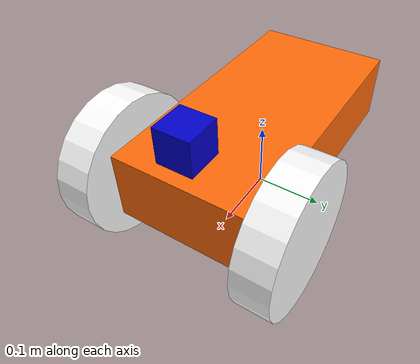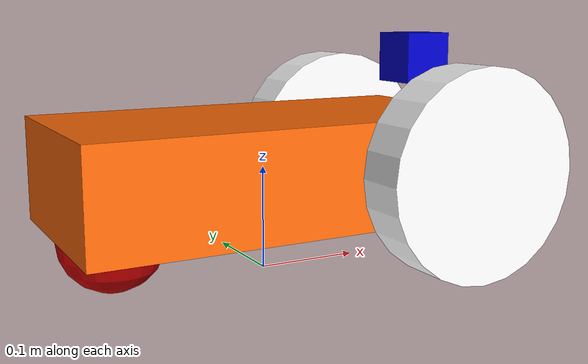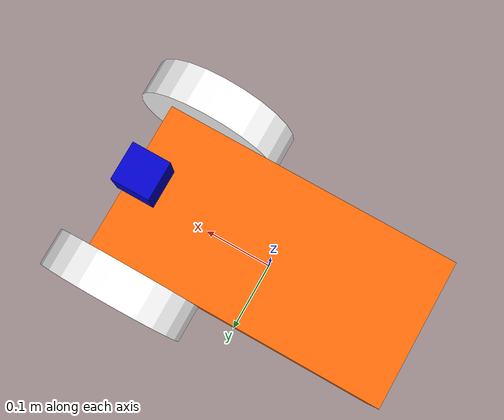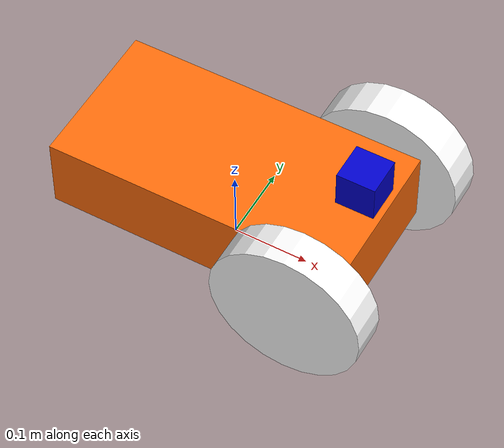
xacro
<?xml version="1.0" ?>
<robot name="twbot" xmlns:xacro="http://www.ros.org/wiki/xacro">

	<!-- constant variable -->
	<xacro:property name="PI" value="3.1415926535897931" />
	<!-- chassis -->
	<xacro:property name="chassisHeight" value="0.1" />
	<xacro:property name="chassisWidth" value="0.2" />
	<xacro:property name="chassisLength" value="0.4" />
	<xacro:property name="chassisMass" value="50" />
	<!-- wheel -->
	<xacro:property name="wheelWidth" value="0.05" />
	<xacro:property name="wheelRadius" value="0.1" />
	<xacro:property name="wheelPos" value="0.25" />
	<xacro:property name="wheelMass" value="5" />
	<!-- caster -->
	<xacro:property name="casterRadius" value="0.05" />
	<xacro:property name="casterMass" value="5" />
	<!-- camera -->
	<xacro:property name="cameraSize" value="0.05" />
	<xacro:property name="cameraMass" value="0.1" />

	<!-- include -->
	<xacro:include filename="$(find twbot_description)/urdf/twbot2.gazebo" />
	<xacro:include filename="$(find twbot_description)/urdf/materials.xacro" />
	<xacro:include filename="$(find twbot_description)/urdf/macros.xacro" />

	<!-- chassis -->

	<link name="chassis">
    <pose> 0 0 0.1 0 0 0 </pose>
    <collision>
      <origin xyz="0 0 ${wheelRadius}" rpy="0 0 0"/>
      <geometry>
        <box size="${chassisLength} ${chassisWidth} ${chassisHeight}"/>
      </geometry>
    </collision>
    <visual>
      <origin xyz="0 0 ${wheelRadius}" rpy="0 0 0"/>
      <geometry>
        <box size="${chassisLength} ${chassisWidth} ${chassisHeight}"/>
      </geometry>
      <material name="orange"/>
    </visual>
    <inertial>
      <origin xyz="0 0 ${wheelRadius}" rpy="0 0 0"/>
      <mass value="${chassisMass}"/>
      <box_inertia m="${chassisMass}" x="${chassisLength}" y="${chassisWidth}" z="${chassisHeight}"/>
    </inertial>
  </link>

  <joint name="fixed" type="fixed">
    <parent link="chassis"/>
    <child link="caster_wheel"/>
  </joint>

  <link name="caster_wheel">
    <collision>
      <origin xyz="${casterRadius-chassisLength/2} 0 ${casterRadius-chassisHeight+wheelRadius}" rpy="0 0 0"/>
      <geometry>
        <sphere radius="${casterRadius}"/>
      </geometry>
    </collision>

    <visual>
      <origin xyz="${casterRadius-chassisLength/2} 0 ${casterRadius-chassisHeight+wheelRadius}" rpy="0 0 0"/>
      <geometry>
        <sphere radius="${casterRadius}"/>
      </geometry>
      <material name="red"/>
    </visual>

    <inertial>
      <origin xyz="${casterRadius-chassisLength/2} 0 ${casterRadius-chassisHeight+wheelRadius}" rpy="0 0 0"/>
      <mass value="${casterMass}"/>
      <sphere_inertia m="${casterMass}" r="${casterRadius}"/>
    </inertial>
  </link>

  <!-- Adding Left and Right Wheels -->
  <wheel lr="left" tY="1"/>
  <wheel lr="right" tY="-1"/>

	<!-- Adding a Camera -->
  <joint name="camera_base" type="fixed">
    <parent link="chassis"/>
    <child link="camera" />
    <origin xyz="${chassisLength/2-cameraSize/2} 0 ${chassisHeight+wheelRadius}" rpy="0 0 0" />
  </joint>

  <link name="camera">
    <collision>
      <origin xyz="0 0 0" rpy="0 0 0"/>
      <geometry>
        <box size="${cameraSize} ${cameraSize} ${cameraSize}"/>
      </geometry>
    </collision>

    <visual>
      <origin xyz="0 0 0" rpy="0 0 0"/>
      <geometry>
        <box size="${cameraSize} ${cameraSize} ${cameraSize}"/>
      </geometry>
      <material name="blue"/>
    </visual>

    <inertial>
      <mass value="${cameraMass}" />
      <origin xyz="0 0 0" rpy="0 0 0"/>
      <box_inertia m="${cameraMass}" x="${cameraSize}" y="${cameraSize}" z="${cameraSize}" />
    </inertial>
  </link>

</robot>

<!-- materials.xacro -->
<robot>

	<material name="black">
		<color rgba="0.0 0.0 0.0 1.0" />
	</material>

	<material name="blue">
		<color rgba="0.0 0.0 0.8 1.0" />
	</material>

	<material name="green">
		<color rgba="0.0 0.8 0.0 1.0" />
	</material>

	<material name="red">
		<color rgba="0.8 0.0 0.0 1.0" />
	</material>

	<material name="grey">
		<color rgba="0.2 0.2 0.2 1.0" />
	</material>

	<material name="orange">
		<color rgba=" 1.0 0.42 0.04 1.0" />
	</material>

	<material name="white">
		<color rgba="1.0 1.0 1.0 1.0" />
	</material>

</robot>

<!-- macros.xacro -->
<robot>

  <macro name="cylinder_inertia" params="m r h">
    <inertia
			ixx="${m*(3*r*r+h*h)/12}" ixy = "0" ixz = "0"
      iyy="${m*(3*r*r+h*h)/12}" iyz = "0"
      izz="${m*r*r/2}"
    />
  </macro>

  <macro name="box_inertia" params="m x y z">
    <inertia
			ixx="${m*(y*y+z*z)/12}" ixy = "0" ixz = "0"
      iyy="${m*(x*x+z*z)/12}" iyz = "0"
      izz="${m*(x*x+z*z)/12}"
    />
  </macro>

  <macro name="sphere_inertia" params="m r">
    <inertia
			ixx="${2*m*r*r/5}" ixy = "0" ixz = "0"
      iyy="${2*m*r*r/5}" iyz = "0"
      izz="${2*m*r*r/5}"
    />
  </macro>

  <macro name="wheel" params="lr tY">

    <link name="${lr}_wheel">
      <collision>
        <origin xyz="0 0 0" rpy="0 ${PI/2} ${PI/2}" />
        <geometry>
          <cylinder length="${wheelWidth}" radius="${wheelRadius}"/>
        </geometry>
      </collision>

      <visual>
        <origin xyz="0 0 0" rpy="0 ${PI/2} ${PI/2}" />
        <geometry>
          <cylinder length="${wheelWidth}" radius="${wheelRadius}"/>
        </geometry>
        <material name="white"/>
      </visual>

      <inertial>
        <origin xyz="0 0 0" rpy="0 ${PI/2} ${PI/2}" />
        <mass value="${wheelMass}"/>
        <cylinder_inertia m="${wheelMass}" r="${wheelRadius}" h="${wheelWidth}"/>
      </inertial>
    </link>

    <gazebo reference="${lr}_wheel">
      <mu1 value="1.0"/>
      <mu2 value="1.0"/>
      <kp  value="10000000.0" />
      <kd  value="1.0" />
      <fdir1 value="1 0 0"/>
      <material>Gazebo/White</material>
    </gazebo>

    <joint name="${lr}_wheel_hinge" type="continuous">
      <parent link="chassis"/>
      <child link="${lr}_wheel"/>
      <origin xyz="${-wheelPos+chassisLength} ${tY*wheelWidth/2+tY*chassisWidth/2} ${wheelRadius}" rpy="0 0 0" />
      <axis xyz="0 1 0" rpy="0 0 0" />
      <limit effort="100" velocity="100"/>
      <joint_properties damping="0.0" friction="0.0"/>
    </joint>

    <transmission name="${lr}_trans">
      <type>transmission_interface/SimpleTransmission</type>
      <joint name="${lr}_wheel_hinge">
        <hardwareInterface>EffortJointInterface</hardwareInterface>
      </joint>
      <actuator name="${lr}Motor">
        <hardwareInterface>EffortJointInterface</hardwareInterface>
        <mechanicalReduction>10</mechanicalReduction>
      </actuator>
    </transmission>

  </macro>
</robot>
